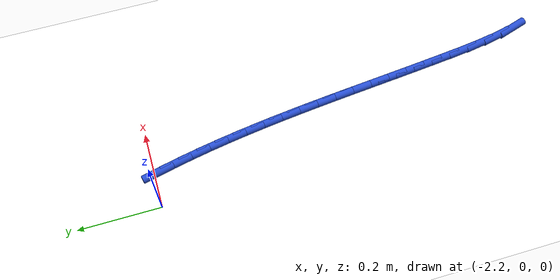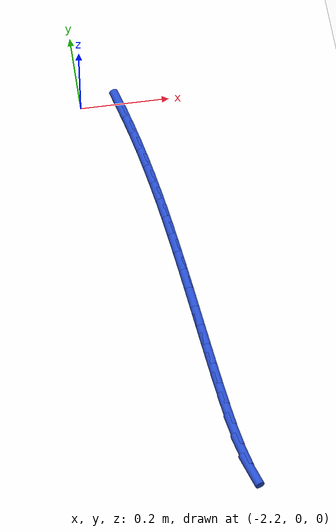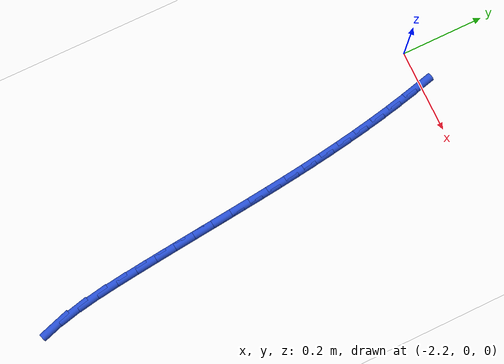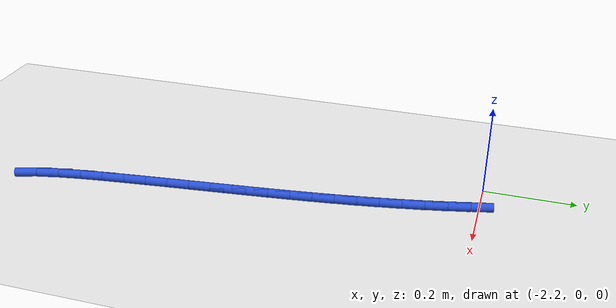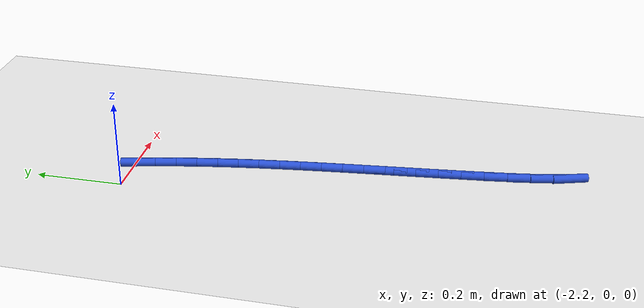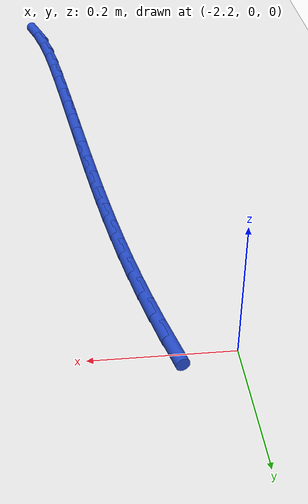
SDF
<sdf version="1.6">
 <world name="default">
  <model name="ground_plane">
   <static>1</static>
   <link name="link">
    <collision name="collision">
     <geometry><plane><normal>0 0 1</normal><size>100 100</size></plane></geometry>
     <surface><friction><ode><mu>100</mu><mu2>50</mu2></ode></friction></surface>
    </collision>
    <visual name="visual">
     <cast_shadows>0</cast_shadows>
     <geometry><plane><normal>0 0 1</normal><size>100 100</size></plane></geometry>
     <material>
      <script><uri>file://media/materials/scripts/gazebo.material</uri><name>Gazebo/WhiteGlow</name></script>
     </material>
    </visual>
   </link>
  </model>
  <model name="line">
   <link name="link_81">
    <pose>-2.1129279323328864 -0.00972666846786727 0.01 0 1.57 -1.3366396495048345</pose>
    <collision name="collision">
     <geometry><cylinder><radius>0.01</radius><length>0.08</length></cylinder></geometry>
    </collision>
    <visual name="visual">
     <material>
      <script><name>Gazebo/Blue</name><uri>file://media/materials/scripts/gazebo.material</uri></script>
     </material>
     <geometry><cylinder><radius>0.01</radius><length>0.08</length></cylinder></geometry>
    </visual>
   </link>
   <link name="link_82">
    <pose>-2.1017597252955404 -0.056547207479845554 0.01 0 1.57 -1.3575971186585682</pose>
    <collision name="collision">
     <geometry><cylinder><radius>0.01</radius><length>0.08</length></cylinder></geometry>
    </collision>
    <visual name="visual">
     <material>
      <script><name>Gazebo/Blue</name><uri>file://media/materials/scripts/gazebo.material</uri></script>
     </material>
     <geometry><cylinder><radius>0.01</radius><length>0.08</length></cylinder></geometry>
    </visual>
   </link>
   <link name="link_83">
    <pose>-2.0916130383049634 -0.10341644159620661 0.01 0 1.57 -1.3768872564917498</pose>
    <collision name="collision">
     <geometry><cylinder><radius>0.01</radius><length>0.08</length></cylinder></geometry>
    </collision>
    <visual name="visual">
     <material>
      <script><name>Gazebo/Blue</name><uri>file://media/materials/scripts/gazebo.material</uri></script>
     </material>
     <geometry><cylinder><radius>0.01</radius><length>0.08</length></cylinder></geometry>
    </visual>
   </link>
   <link name="link_84">
    <pose>-2.082393734449447 -0.1503635096364847 0.01 0 1.57 -1.394426278644555</pose>
    <collision name="collision">
     <geometry><cylinder><radius>0.01</radius><length>0.08</length></cylinder></geometry>
    </collision>
    <visual name="visual">
     <material>
      <script><name>Gazebo/Blue</name><uri>file://media/materials/scripts/gazebo.material</uri></script>
     </material>
     <geometry><cylinder><radius>0.01</radius><length>0.08</length></cylinder></geometry>
    </visual>
   </link>
   <link name="link_85">
    <pose>-2.0740076768172857 -0.1974175504202132 0.01 0 1.57 -1.4101473337272334</pose>
    <collision name="collision">
     <geometry><cylinder><radius>0.01</radius><length>0.08</length></cylinder></geometry>
    </collision>
    <visual name="visual">
     <material>
      <script><name>Gazebo/Blue</name><uri>file://media/materials/scripts/gazebo.material</uri></script>
     </material>
     <geometry><cylinder><radius>0.01</radius><length>0.08</length></cylinder></geometry>
    </visual>
   </link>
   <link name="link_86">
    <pose>-2.0663607284967713 -0.2446077027669256 0.01 0 1.57 -1.4239998174091157</pose>
    <collision name="collision">
     <geometry><cylinder><radius>0.01</radius><length>0.08</length></cylinder></geometry>
    </collision>
    <visual name="visual">
     <material>
      <script><name>Gazebo/Blue</name><uri>file://media/materials/scripts/gazebo.material</uri></script>
     </material>
     <geometry><cylinder><radius>0.01</radius><length>0.08</length></cylinder></geometry>
    </visual>
   </link>
   <link name="link_87">
    <pose>-2.059358752576197 -0.2919631054961561 0.01 0 1.57 -1.4359484072218751</pose>
    <collision name="collision">
     <geometry><cylinder><radius>0.01</radius><length>0.08</length></cylinder></geometry>
    </collision>
    <visual name="visual">
     <material>
      <script><name>Gazebo/Blue</name><uri>file://media/materials/scripts/gazebo.material</uri></script>
     </material>
     <geometry><cylinder><radius>0.01</radius><length>0.08</length></cylinder></geometry>
    </visual>
   </link>
   <link name="link_88">
    <pose>-2.0529076121438568 -0.3395128974274364 0.01 0 1.57 -1.4459719252458176</pose>
    <collision name="collision">
     <geometry><cylinder><radius>0.01</radius><length>0.08</length></cylinder></geometry>
    </collision>
    <visual name="visual">
     <material>
      <script><name>Gazebo/Blue</name><uri>file://media/materials/scripts/gazebo.material</uri></script>
     </material>
     <geometry><cylinder><radius>0.01</radius><length>0.08</length></cylinder></geometry>
    </visual>
   </link>
   <link name="link_89">
    <pose>-2.046913170288043 -0.3872862173803008 0.01 0 1.57 -1.4540621240344427</pose>
    <collision name="collision">
     <geometry><cylinder><radius>0.01</radius><length>0.08</length></cylinder></geometry>
    </collision>
    <visual name="visual">
     <material>
      <script><name>Gazebo/Blue</name><uri>file://media/materials/scripts/gazebo.material</uri></script>
     </material>
     <geometry><cylinder><radius>0.01</radius><length>0.08</length></cylinder></geometry>
    </visual>
   </link>
   <link name="link_90">
    <pose>-2.04128129009705 -0.43531220417428274 0.01 0 1.57 -1.46022247465864</pose>
    <collision name="collision">
     <geometry><cylinder><radius>0.01</radius><length>0.08</length></cylinder></geometry>
    </collision>
    <visual name="visual">
     <material>
      <script><name>Gazebo/Blue</name><uri>file://media/materials/scripts/gazebo.material</uri></script>
     </material>
     <geometry><cylinder><radius>0.01</radius><length>0.08</length></cylinder></geometry>
    </visual>
   </link>
   <link name="link_91">
    <pose>-2.0359178346591698 -0.4836199966289155 0.01 0 1.57 -1.4644670171841914</pose>
    <collision name="collision">
     <geometry><cylinder><radius>0.01</radius><length>0.08</length></cylinder></geometry>
    </collision>
    <visual name="visual">
     <material>
      <script><name>Gazebo/Blue</name><uri>file://media/materials/scripts/gazebo.material</uri></script>
     </material>
     <geometry><cylinder><radius>0.01</radius><length>0.08</length></cylinder></geometry>
    </visual>
   </link>
   <link name="link_92">
    <pose>-2.030728667062695 -0.5322387335637335 0.01 0 1.57 -1.4668193152429438</pose>
    <collision name="collision">
     <geometry><cylinder><radius>0.01</radius><length>0.08</length></cylinder></geometry>
    </collision>
    <visual name="visual">
     <material>
      <script><name>Gazebo/Blue</name><uri>file://media/materials/scripts/gazebo.material</uri></script>
     </material>
     <geometry><cylinder><radius>0.01</radius><length>0.08</length></cylinder></geometry>
    </visual>
   </link>
   <link name="link_93">
    <pose>-2.02561965039592 -0.5811975537982685 0.01 0 1.57 -1.467311539017945</pose>
    <collision name="collision">
     <geometry><cylinder><radius>0.01</radius><length>0.08</length></cylinder></geometry>
    </collision>
    <visual name="visual">
     <material>
      <script><name>Gazebo/Blue</name><uri>file://media/materials/scripts/gazebo.material</uri></script>
     </material>
     <geometry><cylinder><radius>0.01</radius><length>0.08</length></cylinder></geometry>
    </visual>
   </link>
   <link name="link_94">
    <pose>-2.020496647747138 -0.6305255961520545 0.01 0 1.57 -1.4659836857699635</pose>
    <collision name="collision">
     <geometry><cylinder><radius>0.01</radius><length>0.08</length></cylinder></geometry>
    </collision>
    <visual name="visual">
     <material>
      <script><name>Gazebo/Blue</name><uri>file://media/materials/scripts/gazebo.material</uri></script>
     </material>
     <geometry><cylinder><radius>0.01</radius><length>0.08</length></cylinder></geometry>
    </visual>
   </link>
   <link name="link_95">
    <pose>-2.0152655222046407 -0.680251999444625 0.01 0 1.57 -1.4628829343822114</pose>
    <collision name="collision">
     <geometry><cylinder><radius>0.01</radius><length>0.08</length></cylinder></geometry>
    </collision>
    <visual name="visual">
     <material>
      <script><name>Gazebo/Blue</name><uri>file://media/materials/scripts/gazebo.material</uri></script>
     </material>
     <geometry><cylinder><radius>0.01</radius><length>0.08</length></cylinder></geometry>
    </visual>
   </link>
   <link name="link_96">
    <pose>-2.0098321368567227 -0.7304059024955144 0.01 0 1.57 -1.4580631203777927</pose>
    <collision name="collision">
     <geometry><cylinder><radius>0.01</radius><length>0.08</length></cylinder></geometry>
    </collision>
    <visual name="visual">
     <material>
      <script><name>Gazebo/Blue</name><uri>file://media/materials/scripts/gazebo.material</uri></script>
     </material>
     <geometry><cylinder><radius>0.01</radius><length>0.08</length></cylinder></geometry>
    </visual>
   </link>
   <link name="link_97">
    <pose>-2.0041023547916765 -0.7810164441242543 0.01 0 1.57 -1.4510210888859725</pose>
    <collision name="collision">
     <geometry><cylinder><radius>0.01</radius><length>0.08</length></cylinder></geometry>
    </collision>
    <visual name="visual">
     <material>
      <script><name>Gazebo/Blue</name><uri>file://media/materials/scripts/gazebo.material</uri></script>
     </material>
     <geometry><cylinder><radius>0.01</radius><length>0.08</length></cylinder></geometry>
    </visual>
   </link>
   <link name="link_98">
    <pose>-1.9979562580147745 -0.8320844100940384 0.01 0 1.57 -1.433133741535614</pose>
    <collision name="collision">
     <geometry><cylinder><radius>0.01</radius><length>0.08</length></cylinder></geometry>
    </collision>
    <visual name="visual">
     <material>
      <script><name>Gazebo/Blue</name><uri>file://media/materials/scripts/gazebo.material</uri></script>
     </material>
     <geometry><cylinder><radius>0.01</radius><length>0.08</length></cylinder></geometry>
    </visual>
   </link>
   <link name="link_99">
    <pose>-1.990878177734322 -0.8831753544660292 0.01 0 1.57 -1.39704383416441</pose>
    <collision name="collision">
     <geometry><cylinder><radius>0.01</radius><length>0.08</length></cylinder></geometry>
    </collision>
    <visual name="visual">
     <material>
      <script><name>Gazebo/Blue</name><uri>file://media/materials/scripts/gazebo.material</uri></script>
     </material>
     <geometry><cylinder><radius>0.01</radius><length>0.08</length></cylinder></geometry>
    </visual>
   </link>
   <link name="link_100">
    <pose>-1.9820426041296775 -0.9335140799007099 0.01 0 1.57 -1.3407936135922045</pose>
    <collision name="collision">
     <geometry><cylinder><radius>0.01</radius><length>0.08</length></cylinder></geometry>
    </collision>
    <visual name="visual">
     <material>
      <script><name>Gazebo/Blue</name><uri>file://media/materials/scripts/gazebo.material</uri></script>
     </material>
     <geometry><cylinder><radius>0.01</radius><length>0.08</length></cylinder></geometry>
    </visual>
   </link>
   <link name="link_101">
    <pose>-1.9706157514751184 -0.9823162875323447 0.01 0 1.57 -1.2615252765916862</pose>
    <collision name="collision">
     <geometry><cylinder><radius>0.01</radius><length>0.08</length></cylinder></geometry>
    </collision>
    <visual name="visual">
     <material>
      <script><name>Gazebo/Blue</name><uri>file://media/materials/scripts/gazebo.material</uri></script>
     </material>
     <geometry><cylinder><radius>0.01</radius><length>0.08</length></cylinder></geometry>
    </visual>
   </link>
  </model>
 </world>
</sdf>
